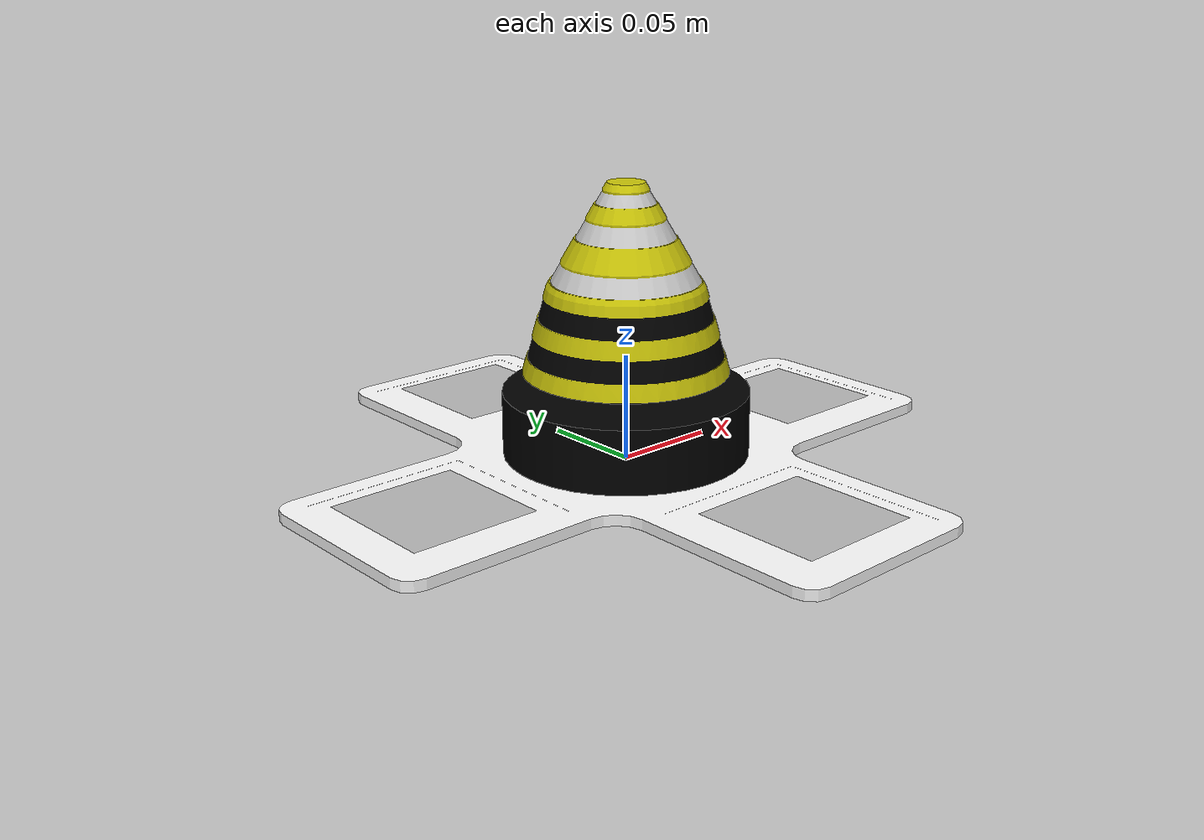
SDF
<?xml version="1.0"?>
<sdf version="1.4">
  <model name="docking_station">
    <pose>0 0 0 0 0 0</pose>
    <static>true</static>
    <link name="apriltag36_11_00000_link">
      <visual name="apriltag36_11_00000_visual">
        <pose>-0.11 0 0.006 0 0 -1.5708</pose>
        <geometry>
          <mesh>
            <uri>model://apriltag_0_size_18cm/meshes/apriltag36_11_00000.dae</uri>
          </mesh>
        </geometry>
      </visual>
    </link>
    <link name="apriltag36_11_00001_link">
      <visual name="apriltag36_11_00001_visual">
        <pose>0 -0.11 0.006 0 0 0</pose>
        <geometry>
          <mesh>
            <uri>model://apriltag_0_size_18cm/meshes/apriltag36_11_00001.dae</uri>
          </mesh>
        </geometry>
      </visual>
    </link>
    <link name="apriltag36_11_00002_link">
      <visual name="apriltag36_11_00002_visual">
        <pose>0.11 0 0.006 0 0 1.5708</pose>
        <geometry>
          <mesh>
            <uri>model://apriltag_0_size_18cm/meshes/apriltag36_11_00002.dae</uri>
          </mesh>
        </geometry>
      </visual>
    </link>
    <link name="apriltag36_11_00003_link">
      <visual name="apriltag36_11_00003_visual">
        <pose>0 0.11 0.006 0 0 3.1415</pose>
        <geometry>
          <mesh>
            <uri>model://apriltag_0_size_18cm/meshes/apriltag36_11_00003.dae</uri>
          </mesh>
        </geometry>
      </visual>
    </link>
    <link name="docking_port_link">
      <visual name="docking_port_visual">
        <pose>0 0 0 0 0 0</pose>
        <geometry>
          <mesh>
            <uri>model://docking_station/meshes/docking_port.dae</uri>
          </mesh>
        </geometry>
      </visual>
    </link>
  </model>
</sdf>
